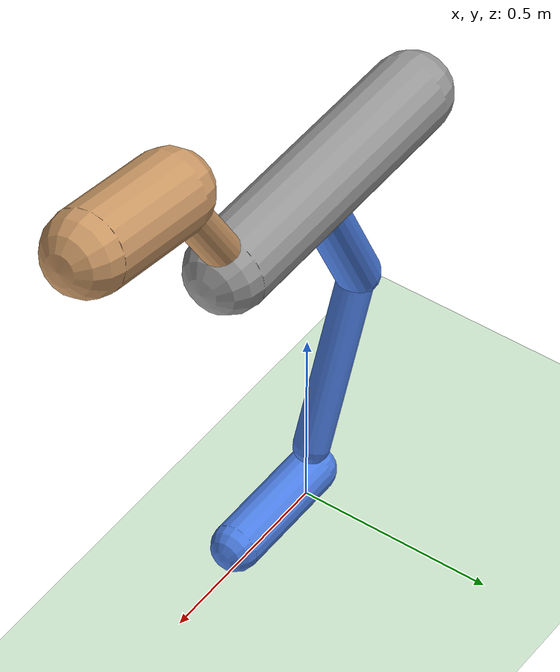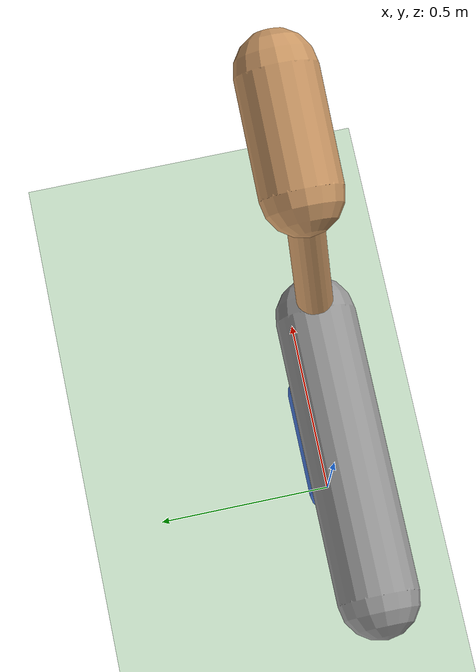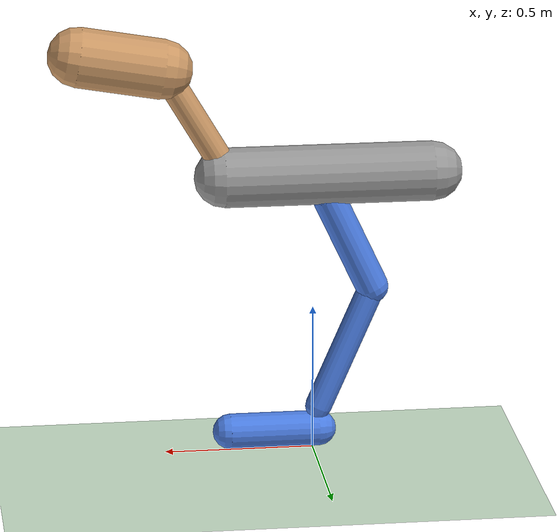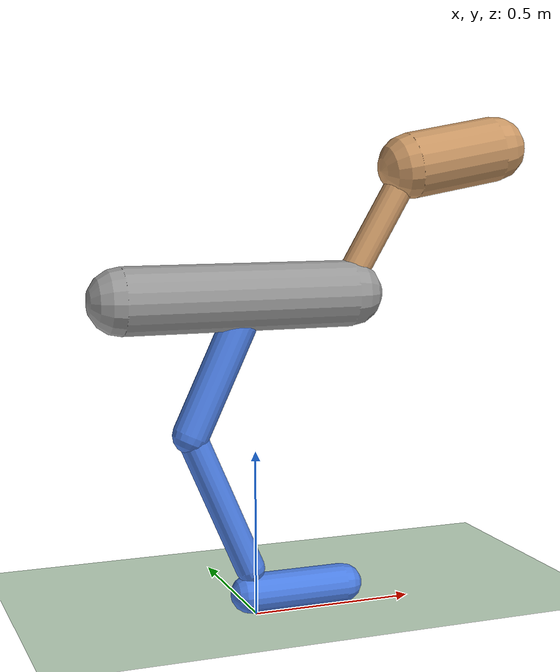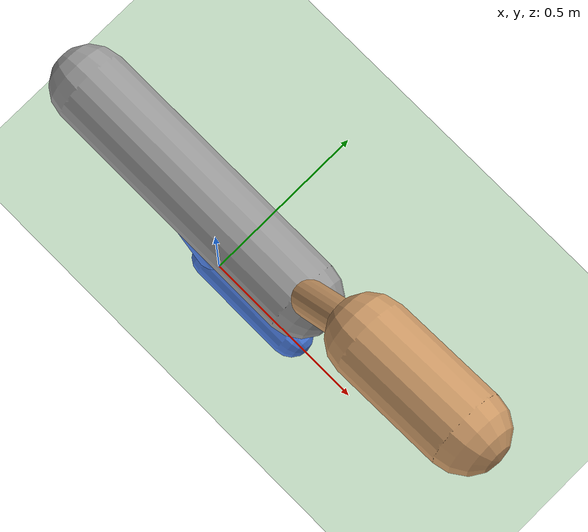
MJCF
<?xml version="1.0" encoding="utf-8"?>
<mujoco model="pilot_p3">
  <compiler angle="degree" inertiafromgeom="true" />
  <option integrator="RK4" timestep="0.002" />
  <visual>
    <global offwidth="1920" offheight="1080" />
  </visual>
  <default>
    <joint armature="0.01" damping="0.1" limited="true" />
    <geom conaffinity="0" condim="3" contype="1" density="1000" friction="0.9 0.1 0.1" rgba="0.8 0.6 0.4 1" />
  </default>
  <asset>
    <texture type="skybox" builtin="gradient" rgb1=".4 .5 .6" rgb2="0 0 0" width="100" height="100" />
    <texture builtin="checker" height="100" name="texplane" rgb1="0 0 0" rgb2="0.8 0.8 0.8" type="2d" width="100" />
    <material name="MatPlane" reflectance="0.5" shininess="1" specular="1" texrepeat="60 60" texture="texplane" />
  </asset>
  <worldbody>
    <light cutoff="100" diffuse="1 1 1" dir="0 0 -1.3" directional="true" exponent="1" pos="0 0 1.3" specular=".1 .1 .1" />
    <geom conaffinity="1" condim="3" name="floor" pos="0 0 0" rgba="0.8 0.9 0.8 1" size="100 100 100" type="plane" material="MatPlane" />
    <body name="torso" pos="-0.0500 0.0000 0.9650">
      <camera name="track" mode="trackcom" pos="0 -3 -0.25" xyaxes="1 0 0 0 0 1" />
      <joint armature="0" axis="1 0 0" damping="0" limited="false" name="rootx" pos="0 0 0" stiffness="0" type="slide" />
      <joint armature="0" axis="0 0 1" damping="0" limited="false" name="rootz" pos="0 0 0" ref="0.9650" stiffness="0" type="slide" />
      <joint armature="0" axis="0 1 0" damping="0" limited="false" name="rooty" pos="0 0 0" stiffness="0" type="hinge" />
      <geom name="torso_geom" type="capsule" size="0.1000" rgba="0.6 0.6 0.6 1" friction="0.9" fromto="-0.3500 0.0000 0.0000 0.3500 0.0000 0.0000" />
      <body name="neck" pos="0.3500 0.0000 0.0400">
        <joint axis="0 -1 0" name="neck_joint" pos="0 0 0" range="-50 50" type="hinge" />
        <geom name="neck_geom" type="capsule" size="0.0450" friction="0.9" rgba="0.8 0.6 0.4 1" fromto="0.0000 0.0000 0.0000 0.2000 0.0000 0.3400" />
        <body name="head" pos="0.2000 0.0000 0.3400">
          <joint axis="0 -1 0" name="head_joint" pos="0 0 0" range="-35 35" type="hinge" />
          <geom name="head_geom" type="capsule" size="0.1000" friction="0.9" rgba="0.8 0.6 0.4 1" fromto="0.0000 0.0000 0.0000 0.2800 0.0000 0.0500" />
        </body>
      </body>
      <body name="upper_leg_l" pos="0.0000 0.0000 -0.0800">
        <joint axis="0 -1 0" name="upper_leg_l_joint" pos="0 0 0" range="-70 70" type="hinge" />
        <geom name="upper_leg_l_geom" type="capsule" size="0.0550" friction="0.9" rgba="0.3 0.5 0.9 1" fromto="0.0000 0.0000 0.0000 -0.1500 0.0000 -0.3200" />
        <body name="lower_leg_l" pos="-0.1500 0.0000 -0.3200">
          <joint axis="0 -1 0" name="lower_leg_l_joint" pos="0 0 0" range="-140 0" type="hinge" />
          <geom name="lower_leg_l_geom" type="capsule" size="0.0450" friction="0.9" rgba="0.3 0.5 0.9 1" fromto="0.0000 0.0000 0.0000 0.1800 0.0000 -0.4200" />
          <body name="foot_l" pos="0.1800 0.0000 -0.5000">
            <joint axis="0 -1 0" name="foot_l_joint" pos="0 0 0" range="-45 45" type="hinge" />
            <geom name="foot_l_geom" type="capsule" size="0.0600" friction="1.9" rgba="0.3 0.5 0.9 1" fromto="0.0000 0.0000 0.0000 0.3000 0.0000 0.0000" />
          </body>
        </body>
      </body>
      <body name="upper_leg_r" pos="0.0000 0.0000 -0.0800">
        <joint axis="0 -1 0" name="upper_leg_r_joint" pos="0 0 0" range="-70 70" type="hinge" />
        <geom name="upper_leg_r_geom" type="capsule" size="0.0550" friction="0.9" rgba="0.9 0.3 0.3 1" fromto="0.0000 0.0000 0.0000 -0.1500 0.0000 -0.3200" />
        <body name="lower_leg_r" pos="-0.1500 0.0000 -0.3200">
          <joint axis="0 -1 0" name="lower_leg_r_joint" pos="0 0 0" range="-140 0" type="hinge" />
          <geom name="lower_leg_r_geom" type="capsule" size="0.0450" friction="0.9" rgba="0.9 0.3 0.3 1" fromto="0.0000 0.0000 0.0000 0.1800 0.0000 -0.4200" />
          <body name="foot_r" pos="0.1800 0.0000 -0.5000">
            <joint axis="0 -1 0" name="foot_r_joint" pos="0 0 0" range="-45 45" type="hinge" />
            <geom name="foot_r_geom" type="capsule" size="0.0600" friction="1.9" rgba="0.9 0.3 0.3 1" fromto="0.0000 0.0000 0.0000 0.3000 0.0000 0.0000" />
          </body>
        </body>
      </body>
    </body>
  </worldbody>
  <actuator>
    <motor ctrllimited="true" ctrlrange="-1.0 1.0" gear="276.3" joint="upper_leg_l_joint" />
    <motor ctrllimited="true" ctrlrange="-1.0 1.0" gear="276.3" joint="lower_leg_l_joint" />
    <motor ctrllimited="true" ctrlrange="-1.0 1.0" gear="276.3" joint="foot_l_joint" />
    <motor ctrllimited="true" ctrlrange="-1.0 1.0" gear="276.3" joint="upper_leg_r_joint" />
    <motor ctrllimited="true" ctrlrange="-1.0 1.0" gear="276.3" joint="lower_leg_r_joint" />
    <motor ctrllimited="true" ctrlrange="-1.0 1.0" gear="276.3" joint="foot_r_joint" />
  </actuator>
</mujoco>
